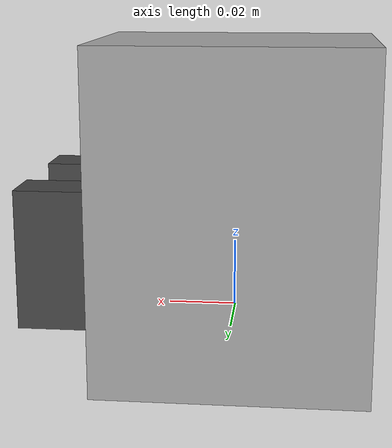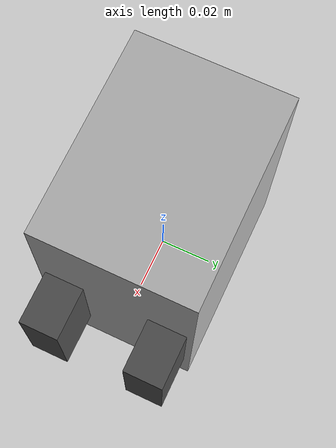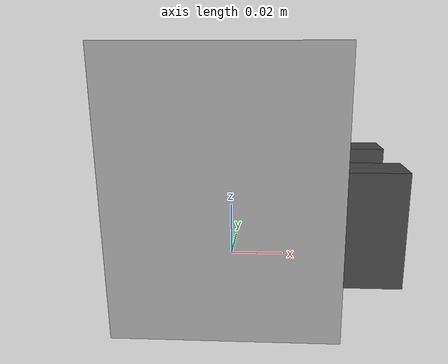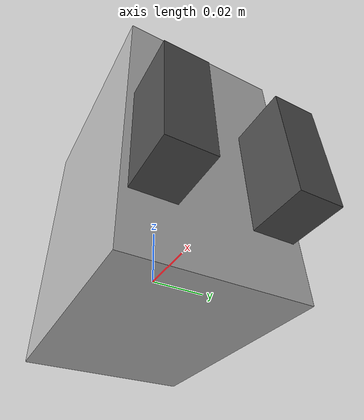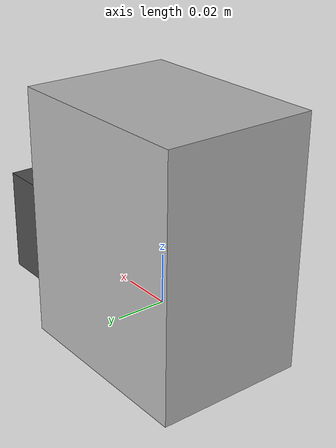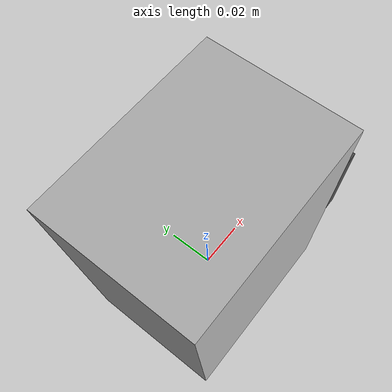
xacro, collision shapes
<?xml version="1.0"?>
<robot xmlns:xacro="http://www.ros.org/wiki/xacro" name="onrobot_gripper">

  <xacro:property name="mesh_path" value="package://robot_pick_place_description/meshes/gripper"/>

  <!-- Adjustable parameters -->
  <xacro:property name="finger_travel" value="0.02"/>   <!-- 2 cm each side -->
  <xacro:property name="base_mass" value="1.0"/>
  <xacro:property name="finger_mass" value="0.2"/>

  <!-- Base link -->
  <link name="gripper_base_link">
    <visual>
      <origin xyz="0 0 0" rpy="0 0 0"/>
      <geometry>
        <mesh filename="${mesh_path}/gripper_base.stl" scale="0.001 0.001 0.001"/>
      </geometry>
      <material name="gray">
        <color rgba="0.7 0.7 0.7 1.0"/>
      </material>
    </visual>

    <collision>
      <origin xyz="0 0 0.03" rpy="0 0 0"/>
      <geometry>
        <box size="0.08 0.06 0.10"/>
      </geometry>
    </collision>

    <inertial>
      <origin xyz="0 0 0" rpy="0 0 0"/>
      <mass value="${base_mass}"/>
      <inertia ixx="0.001" ixy="0.0" ixz="0.0"
               iyy="0.001" iyz="0.0"
               izz="0.001"/>
    </inertial>
  </link>

  <!-- Left finger -->
  <link name="left_finger_link">
    <visual>
      <origin xyz="-0.02 -0.03 -0.02" rpy="0 0 0"/>
      <geometry>
        <mesh filename="${mesh_path}/left_finger.stl" scale="0.001 0.001 0.001"/>
      </geometry>
      <material name="dark_gray">
        <color rgba="0.3 0.3 0.3 1.0"/>
      </material>
    </visual>

    <collision>
      <origin xyz="0.01 -0.01 0.0" rpy="0 0 0"/>
      <geometry>
        <box size="0.06 0.015 0.04"/>
      </geometry>
    </collision>

    <inertial>
      <origin xyz="-0.02 -0.03 -0.02" rpy="0 0 0"/>
      <mass value="${finger_mass}"/>
      <inertia ixx="0.0001" ixy="0.0" ixz="0.0"
               iyy="0.0001" iyz="0.0"
               izz="0.0001"/>
    </inertial>
  </link>

  <!-- Right finger -->
  <link name="right_finger_link">
    <visual>
      <origin xyz="-0.02 0.03 -0.02" rpy="0 0 0"/>
      <geometry>
        <mesh filename="${mesh_path}/right_finger.stl" scale="0.001 0.001 0.001"/>
      </geometry>
      <material name="dark_gray"/>
    </visual>

    <collision>
      <origin xyz="0.01 0.01 0.0" rpy="0 0 0"/>
      <geometry>
        <box size="0.06 0.015 0.04"/>
      </geometry>
    </collision>

    <inertial>
      <origin xyz="-0.02 0.03 -0.02" rpy="0 0 0"/>
      <mass value="${finger_mass}"/>
      <inertia ixx="0.0001" ixy="0.0" ixz="0.0"
               iyy="0.0001" iyz="0.0"
               izz="0.0001"/>
    </inertial>
  </link>
  <!-- Finger joints -->
  <!--
    Since all meshes share one assembly frame,
    we start both joints at the base origin.
    Motion is simplified as sliding along Y.
    If motion direction is wrong, we will flip axis later.
  -->

  <!-- Left finger: main actuated joint -->
  <joint name="left_finger_joint" type="revolute">
    <parent link="gripper_base_link"/>
    <child link="left_finger_link"/>
    <origin xyz="0.02 0.03 0.02" rpy="0 0 0"/>
    <axis xyz="0 -1 0"/>
    <limit lower="-1.0" upper="0.0" effort="50" velocity="0.05"/>
  </joint>

  <!-- Right finger: mimics left, but opposite direction -->
  <joint name="right_finger_joint" type="revolute">
    <parent link="gripper_base_link"/>
    <child link="right_finger_link"/>
    <origin xyz="0.02 -0.03 0.02" rpy="0 0 0"/>
    <axis xyz="0 -1 0"/>
    <limit lower="0.0" upper="1.0" effort="50" velocity="0.05"/>
    <mimic joint="left_finger_joint" multiplier="-1" offset="0"/>
  </joint>
  <!-- Optional TCP frame -->
  <link name="gripper_tcp"/>

  <joint name="gripper_tcp_joint" type="fixed">
    <parent link="gripper_base_link"/>
    <child link="gripper_tcp"/>
    <origin xyz="0.10 0 0.02" rpy="0 0 0"/>
  </joint>

</robot>
